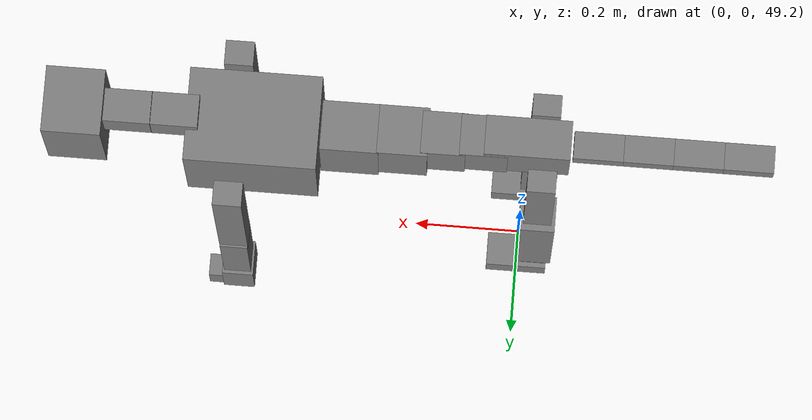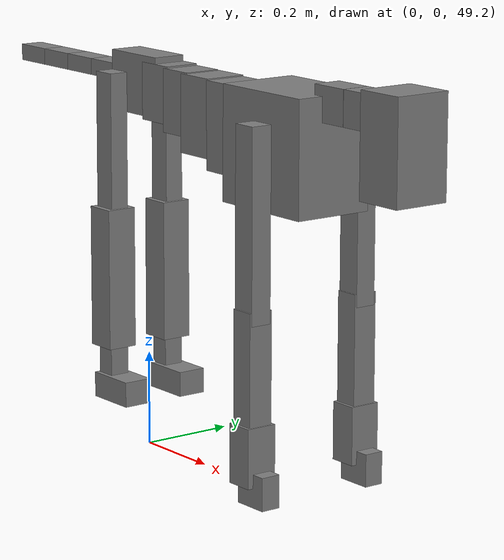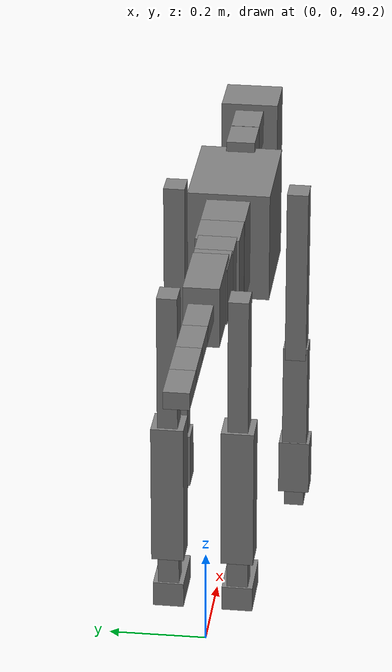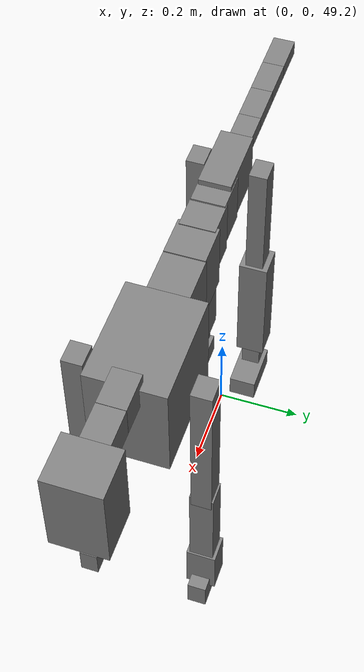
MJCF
<mujoco model="dog">

    <default>
        <joint armature="0.02" stiffness="1" damping="0.2" limited="true"/>
        <geom condim="3" friction="1 0.05 0.05" margin="0.01"/>
        <motor ctrllimited="true" ctrlrange="-1.0 1.0" forcelimited="true" gear="50"/>
    </default>

    <compiler inertiafromgeom="true" angle="radian"/>

    <option timestep="0.016" iterations="50" tolerance="1e-10" solver="Newton" jacobian="dense" cone="pyramidal"/>

    <size nconmax="20000" njmax="60000" nstack="5000000"/>
    <visual>
        <map force="0.1" zfar="30"/>
        <rgba haze="0.15 0.25 0.35 1"/>
        <quality shadowsize="2048"/>
        <global offwidth="800" offheight="800"/>
    </visual>

    <asset>
        <texture type="skybox" builtin="gradient" rgb1="0.3 0.5 0.7" rgb2="0 0 0" width="512" height="512"/>
        <texture name="texplane" type="2d" builtin="checker" rgb1=".2 .3 .4" rgb2=".1 0.15 0.2" width="512" height="512"
                 mark="cross" markrgb=".8 .8 .8"/>
        <texture name="texgeom" type="cube" builtin="flat" mark="cross" width="127" height="1278" rgb1="0.8 0.6 0.4"
                 rgb2="0.8 0.6 0.4" markrgb="1 1 1" random="0.01"/>

        <material name="matplane" reflectance="0.3" texture="texplane" texrepeat="1 1" texuniform="true"/>
        <material name="matgeom" texture="texgeom" texuniform="true" rgba="0.8 0.6 .4 1"/>
    </asset>

    <worldbody>
        <geom name="floor" pos="0 0 0" size="0 0 .25" type="plane" material="matplane" condim="3"/>

        <light directional="false" diffuse=".2 .2 .2" specular="0 0 0" pos="0 0 5" dir="0 0 -1" castshadow="false"/>
        <light mode="targetbodycom" target="torso" directional="false" diffuse=".8 .8 .8" specular="0.3 0.3 0.3"
               pos="0 0 4.0" dir="0 0 -1"/>

        <body name="root" pos="0 0 50">
            <freejoint name="root_1"/>
            <geom type="box" pos="0 0 -0.02" size="0.0774  0.0358  0.063" density="2030"/>

            <body name="spine1" pos="0.054 0 0">
                <joint name="spine1_y" axis="0 1 0" range="0 0.7" limited="true"/>
                <geom type="box" pos="0.02375 0 -0.03" size="0.04375  0.0375  0.05985" density="2030"/>

                <body name="spine2" pos="0.0612 0 0">
                    <joint name="spine2_y" axis="0 1 0" range="-0.15 0.15" limited="true"/>
                    <geom type="box" pos="0.03555  0  -0.04" size="0.04055  0.039  0.06615" density="2030"/>

                    <body name="spine3" pos="0.0730 0 0">
                        <joint name="spine3_y" axis="0 1 0" range="-0.15 0.15" limited="true"/>
                        <geom type="box" pos="0.03555  0  -0.057" size="0.04555  0.0445  0.081" density="2030"/>

                        <body name="spine4" pos="0.0780 0 0">
                            <joint name="spine4_y" axis="0 1 0" range="-0.15 0.15" limited="true"/>
                            <geom type="box" pos="0.05265  0  -0.07" size="0.05265  0.045  0.09135" density="2030"/>

                            <body name="torso" pos="0.1082 0 0">
                                <joint name="torso_y" axis="0 1 0" range="-0.15 0.15" limited="true"/>
                                <geom type="box" pos="0.11925  0  -0.085" size="0.11925  0.085  0.11745"
                                      density="2030"/>

                                <body name="neck1" pos="0.2160  0   0.0180">
                                    <joint name="neck1_y" axis="0 1 0" range="-1.2  -1" limited="true"/>
                                    <geom type="box" pos="0.0423  0  0" size="0.0423  0.03  0.036" density="2325"/>

                                    <body name="neck2" pos="0.0853  0  0">
                                        <joint name="neck2_y" axis="0 1 0" range="0.1  0" limited="true"/>
                                        <geom type="box" pos="0.0423  0  0" size="0.0423  0.03  0.036" density="2325"/>

                                        <body name="head" pos="0.0853  0  0">
                                            <joint name="head_y" axis="0 1 0" range="-0.3  -0.2" limited="true"/>
                                            <geom type="box" pos="0.0531  0  -0.055" size="0.0531  0.06  0.1044"
                                                  density="4030"/>

                                        </body>
                                    </body>
                                </body>

                                <body name="front_shoulder" pos="0.156  0   -0.0480">
                                    <joint name="front_shoulder_y" axis="0 1 0" range="-1 1.5" limited="true"/>
                                    <geom type="box" pos="0 0.13 -0.1673" size="0.0263  0.0224  0.1940" density="1158"/>
                                    <geom type="box" pos="0 -0.13 -0.1673" size="0.0263  0.0224  0.1940"
                                          density="1158"/>

                                    <body name="front_elbow" pos="0  0  -0.3346">
                                        <joint name="front_elbow_y" axis="0 1 0" range="-2 0" limited="true"/>
                                        <geom type="box" pos="0 0.13 -0.1206" size="0.0257  0.0263  0.1206"
                                              density="1081"/>
                                        <geom type="box" pos="0 -0.13 -0.1206" size="0.0257  0.0263  0.1206"
                                              density="1081"/>

                                        <body name="front_wrist" pos="0  0  -0.2412">
                                            <joint name="front_wrist_y" axis="0 1 0" range="-0.2 0" limited="true"/>
                                            <geom type="box" pos="0 0.13 -0.0472" size="0.0296  0.0329  0.0604"
                                                  density="1664"/>
                                            <geom type="box" pos="0 -0.13 -0.0472" size="0.0296  0.0329  0.0604"
                                                  density="1664"/>

                                            <body name="front_finger_end" pos="0  0  -0.0944">
                                                <joint name="front_finger_y" axis="0 1 0" range="-0.4 1"
                                                       limited="true"/>
                                                <geom type="box" pos="0.0209  0.13  -0.0188"
                                                      size="0.0382  0.0209  0.0338" density="1515"/>
                                                <geom type="box" pos="0.0209  -0.13  -0.0188"
                                                      size="0.0382  0.0209  0.0338" density="1515"/>

                                            </body>

                                        </body>
                                    </body>
                                </body>

                            </body>
                        </body>
                    </body>
                </body>
            </body>

            <body name="back_hip" pos="-0.03 0 -0.018">
                <joint name="back_hip_y" axis="0 1 0" range="-1.5 0.3" limited="true"/>
                <geom type="box" pos="0 0.07 -0.1390" size="0.0259  0.0203  0.1618" density="1154"/>
                <geom type="box" pos="0 -0.07 -0.1390" size="0.0259  0.0203  0.1618" density="1154"/>

                <body name="back_knee" pos="0  0  -0.2781">
                    <joint name="back_knee_y" axis="0 1 0" range="0 2.8" limited="true"/>
                    <geom type="box" pos="0 0.07 -0.1336" size="0.0332  0.0327  0.1491" density="1227"/>
                    <geom type="box" pos="0 -0.07 -0.1336" size="0.0332  0.0327  0.1491" density="1227"/>

                    <body name="back_ankle" pos="0  0  -0.2672">
                        <joint name="back_ankle_y" axis="0 1 0" range="-2.2 0" limited="true"/>
                        <geom type="box" pos="0 0.07 -0.0453" size="0.0214  0.0214  0.0565" density="1284"/>
                        <geom type="box" pos="0 -0.07 -0.0453" size="0.0214  0.0214  0.0565" density="1284"/>

                        <body name="back_toe_end" pos="0  0  -0.0906">
                            <joint name="back_toe_y" axis="0 1 0" range="-0.4 1" limited="true"/>
                            <geom type="box" pos="0.0310  0.07  -0.0116" size="0.0568  0.0310  0.0266" density="1515"/>
                            <geom type="box" pos="0.0310  -0.07  -0.0116" size="0.0568  0.0310  0.0266" density="1515"/>

                        </body>
                    </body>
                </body>
            </body>

            <body name="tail1" pos="-0.074 0 -0.006">
                <joint name="tail1_y" axis="0 1 0" range="-0.2 0.2" limited="true"/>
                <geom type="box" pos="-0.0536  0  0" size="0.045  0.025  0.0175" density="1587"/>

                <body name="tail2" pos="-0.09 0 0">
                    <joint name="tail2_y" axis="0 1 0" range="-0.2 0.2" limited="true"/>
                    <geom type="box" pos="-0.0536  0  0" size="0.045  0.025  0.0175" density="1587"/>

                    <body name="tail3" pos="-0.09 0 0">
                        <joint name="tail3_y" axis="0 1 0" range="-0.2 0.2" limited="true"/>
                        <geom type="box" pos="-0.0536  0  0" size="0.045  0.025  0.0175" density="1587"/>

                        <body name="tail4" pos="-0.09 0 0">
                            <joint name="tail4_y" axis="0 1 0" range="-0.2 0.2" limited="true"/>
                            <geom type="box" pos="-0.0536  0  0" size="0.045  0.025  0.0175" density="1587"/>

                        </body>
                    </body>
                </body>
            </body>
        </body>
    </worldbody>

    <actuator>
        <motor joint="spine1_y" forcerange="-150 150     "/>
        <motor joint="spine2_y" forcerange="-150 150     "/>
        <motor joint="spine3_y" forcerange="-150 150     "/>
        <motor joint="spine4_y" forcerange="-150 150     "/>
        <motor joint="torso_y" forcerange="-150 150     "/>
        <motor joint="neck1_y" forcerange="-100 100       "/>
        <motor joint="neck2_y" forcerange="-100 100       "/>
        <motor joint="head_y" forcerange="-150 150       "/>
        <motor joint="front_shoulder_y" forcerange="-149.05 100.59"/>
        <motor joint="front_elbow_y" forcerange="-134.99 156.18"/>
        <motor joint="front_wrist_y" forcerange="-142.65 120.41"/>
        <motor joint="front_finger_y" forcerange="-51.21 20.03"/>
        <motor joint="back_hip_y" forcerange="-245.64 225.25"/>
        <motor joint="back_knee_y" forcerange="-330.59 345.01"/>
        <motor joint="back_angle_y" forcerange="-138.63 103.97"/>
        <motor joint="back_toe_y" forcerange="-135.29 32.36"/>
        <motor joint="tail1_y" forcerange="-50 50     "/>
        <motor joint="tail2_y" forcerange="-50 50     "/>
        <motor joint="tail3_y" forcerange="-50 50     "/>
        <motor joint="tail4_y" forcerange="-50 50     "/>
    </actuator>
</mujoco>
